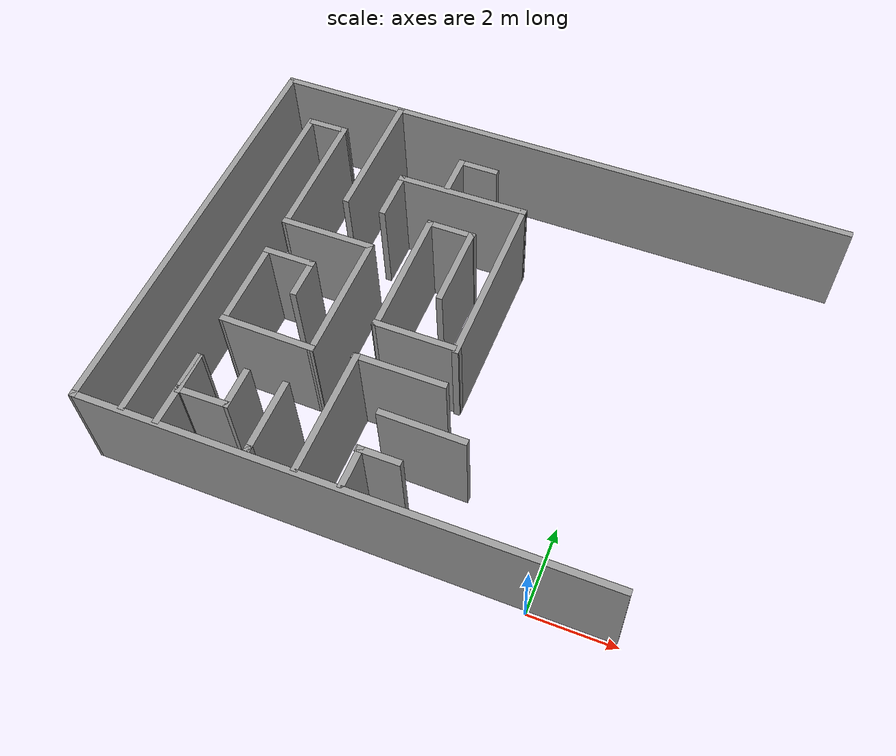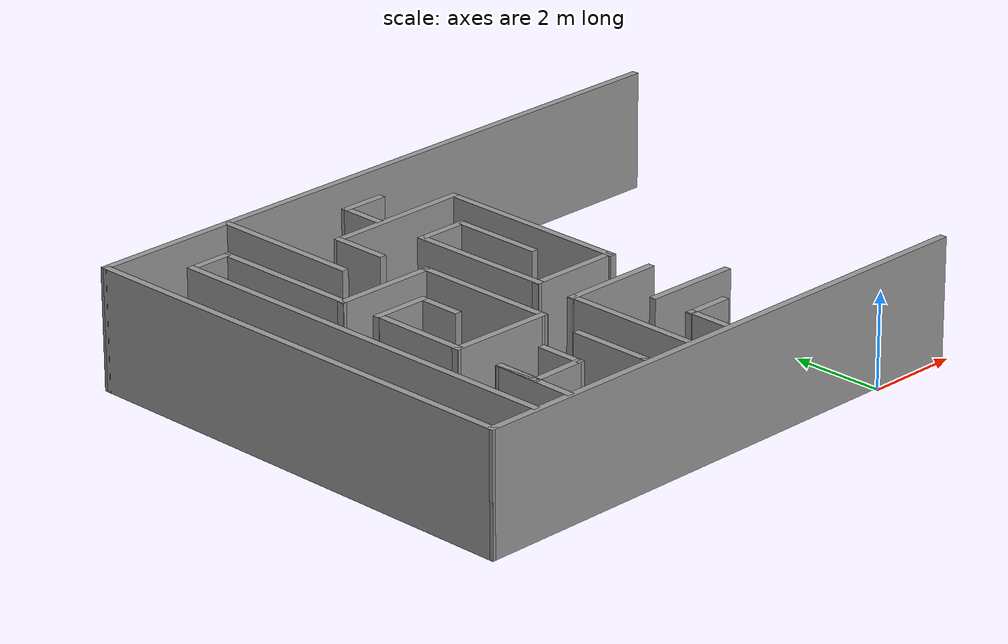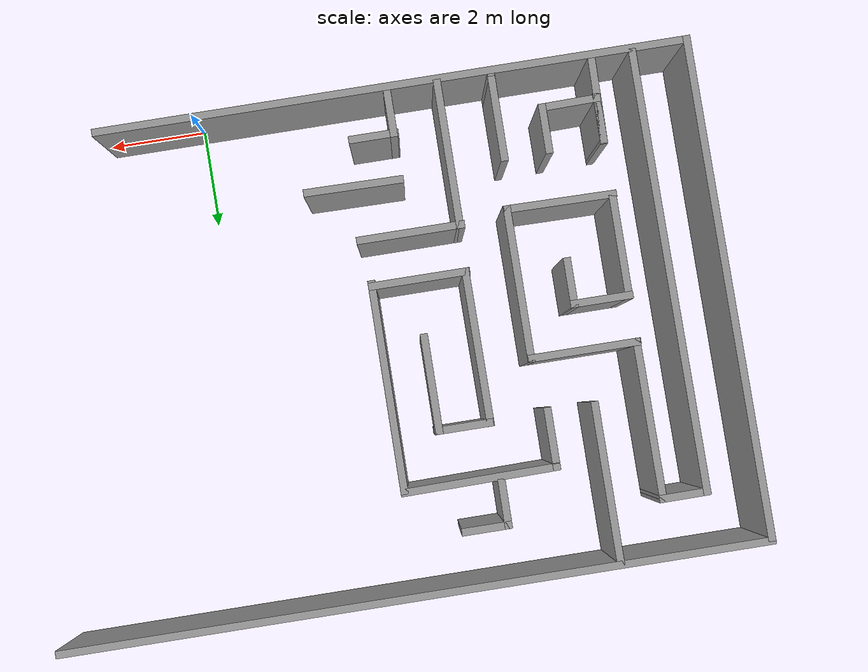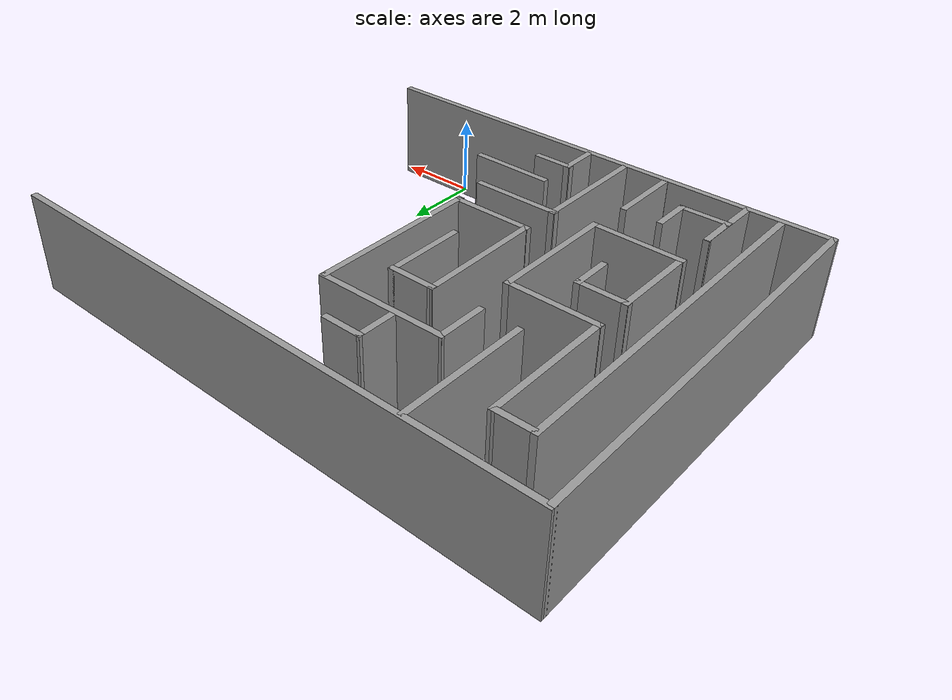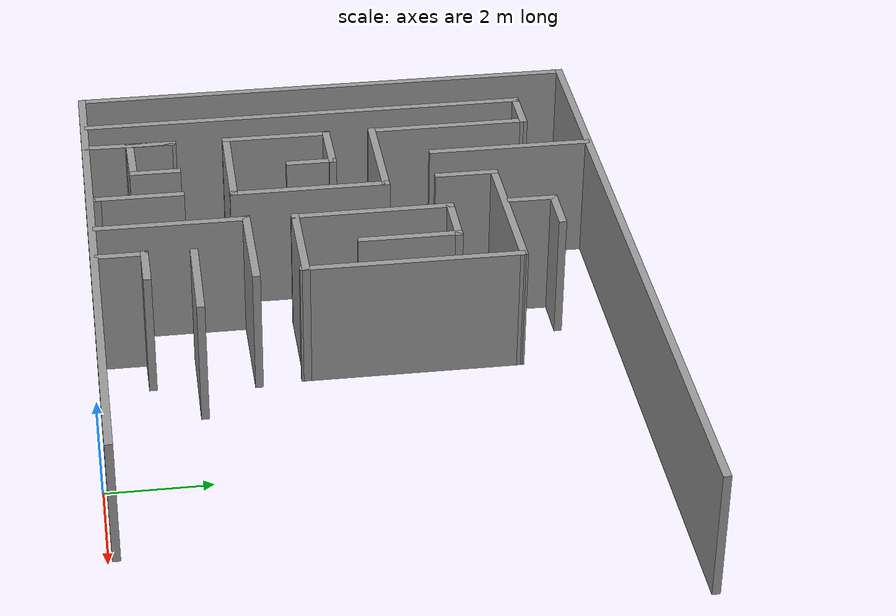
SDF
<sdf version="1.5">
 <model name="Maze2">
  <pose>-2.952 0.082564 0 0 -0 0</pose>
  <link name="Wall_5">
   <collision name="Wall_5_Collision">
    <geometry><box><size>14.2395 0.15 2.5</size></box></geometry>
    <pose>0 0 1.25 0 -0 0</pose>
   </collision>
   <visual name="Wall_5_Visual">
    <pose>0 0 1.25 0 -0 0</pose>
    <geometry><box><size>14.2395 0.15 2.5</size></box></geometry>
    <material>
     <script><uri>file://media/materials/scripts/gazebo.material</uri><name>Gazebo/Grey</name></script>
     <ambient>1 1 1 1</ambient>
    </material>
    <meta><layer>0</layer></meta>
   </visual>
   <pose>-0.02325 10.0829 0 0 -0 3.14159</pose>
  </link>
  <link name="Wall_52">
   <collision name="Wall_52_Collision">
    <geometry><box><size>8.93502 0.15 2.5</size></box></geometry>
    <pose>0 0 1.25 0 -0 0</pose>
   </collision>
   <visual name="Wall_52_Visual">
    <pose>0 0 1.25 0 -0 0</pose>
    <geometry><box><size>8.93502 0.15 2.5</size></box></geometry>
    <material>
     <script><uri>file://media/materials/scripts/gazebo.material</uri><name>Gazebo/Grey</name></script>
     <ambient>1 1 1 1</ambient>
    </material>
    <meta><layer>0</layer></meta>
   </visual>
   <pose>-5.9489 4.545 0 0 -0 1.5748</pose>
  </link>
  <link name="Wall_53">
   <collision name="Wall_53_Collision">
    <geometry><box><size>0.960041 0.15 2.5</size></box></geometry>
    <pose>0 0 1.25 0 -0 0</pose>
   </collision>
   <visual name="Wall_53_Visual">
    <pose>0 0 1.25 0 -0 0</pose>
    <geometry><box><size>0.960041 0.15 2.5</size></box></geometry>
    <material>
     <script><uri>file://media/materials/scripts/gazebo.material</uri><name>Gazebo/Grey</name></script>
     <ambient>1 1 1 1</ambient>
    </material>
    <meta><layer>0</layer></meta>
   </visual>
   <pose>-5.49995 8.94019 0 0 -0 0.007167</pose>
  </link>
  <link name="Wall_54">
   <collision name="Wall_54_Collision">
    <geometry><box><size>3.26322 0.15 2.5</size></box></geometry>
    <pose>0 0 1.25 0 -0 0</pose>
   </collision>
   <visual name="Wall_54_Visual">
    <pose>0 0 1.25 0 -0 0</pose>
    <geometry><box><size>3.26322 0.15 2.5</size></box></geometry>
    <material>
     <script><uri>file://media/materials/scripts/gazebo.material</uri><name>Gazebo/Grey</name></script>
     <ambient>1 1 1 1</ambient>
    </material>
    <meta><layer>0</layer></meta>
   </visual>
   <pose>-5.08833 7.38648 0 0 -0 -1.56655</pose>
  </link>
  <link name="Wall_55">
   <collision name="Wall_55_Collision">
    <geometry><box><size>2.25 0.15 2.5</size></box></geometry>
    <pose>0 0 1.25 0 -0 0</pose>
   </collision>
   <visual name="Wall_55_Visual">
    <pose>0 0 1.25 0 -0 0</pose>
    <geometry><box><size>2.25 0.15 2.5</size></box></geometry>
    <material>
     <script><uri>file://media/materials/scripts/gazebo.material</uri><name>Gazebo/Grey</name></script>
     <ambient>1 1 1 1</ambient>
    </material>
    <meta><layer>0</layer></meta>
   </visual>
   <pose>-4.04494 5.82987 0 0 -0 0</pose>
  </link>
  <link name="Wall_56">
   <collision name="Wall_56_Collision">
    <geometry><box><size>3.13176 0.15 2.5</size></box></geometry>
    <pose>0 0 1.25 0 -0 0</pose>
   </collision>
   <visual name="Wall_56_Visual">
    <pose>0 0 1.25 0 -0 0</pose>
    <geometry><box><size>3.13176 0.15 2.5</size></box></geometry>
    <material>
     <script><uri>file://media/materials/scripts/gazebo.material</uri><name>Gazebo/Grey</name></script>
     <ambient>1 1 1 1</ambient>
    </material>
    <meta><layer>0</layer></meta>
   </visual>
   <pose>-2.98179 4.33901 0 0 -0 -1.57085</pose>
  </link>
  <link name="Wall_57">
   <collision name="Wall_57_Collision">
    <geometry><box><size>2.25017 0.15 2.5</size></box></geometry>
    <pose>0 0 1.25 0 -0 0</pose>
   </collision>
   <visual name="Wall_57_Visual">
    <pose>0 0 1.25 0 -0 0</pose>
    <geometry><box><size>2.25017 0.15 2.5</size></box></geometry>
    <material>
     <script><uri>file://media/materials/scripts/gazebo.material</uri><name>Gazebo/Grey</name></script>
     <ambient>1 1 1 1</ambient>
    </material>
    <meta><layer>0</layer></meta>
   </visual>
   <pose>-4.04509 2.86137 0 0 -0 3.129</pose>
  </link>
  <link name="Wall_58">
   <collision name="Wall_58_Collision">
    <geometry><box><size>2.17595 0.15 2.5</size></box></geometry>
    <pose>0 0 1.25 0 -0 0</pose>
   </collision>
   <visual name="Wall_58_Visual">
    <pose>0 0 1.25 0 -0 0</pose>
    <geometry><box><size>2.17595 0.15 2.5</size></box></geometry>
    <material>
     <script><uri>file://media/materials/scripts/gazebo.material</uri><name>Gazebo/Grey</name></script>
     <ambient>1 1 1 1</ambient>
    </material>
    <meta><layer>0</layer></meta>
   </visual>
   <pose>-5.08152 3.88754 0 0 -0 1.57046</pose>
  </link>
  <link name="Wall_59">
   <collision name="Wall_59_Collision">
    <geometry><box><size>1.25 0.15 2.5</size></box></geometry>
    <pose>0 0 1.25 0 -0 0</pose>
   </collision>
   <visual name="Wall_59_Visual">
    <pose>0 0 1.25 0 -0 0</pose>
    <geometry><box><size>1.25 0.15 2.5</size></box></geometry>
    <material>
     <script><uri>file://media/materials/scripts/gazebo.material</uri><name>Gazebo/Grey</name></script>
     <ambient>1 1 1 1</ambient>
    </material>
    <meta><layer>0</layer></meta>
   </visual>
   <pose>-4.54118 4.90048 0 0 -0 0</pose>
  </link>
  <link name="Wall_6">
   <collision name="Wall_6_Collision">
    <geometry><box><size>10.1084 0.15 2.5</size></box></geometry>
    <pose>0 0 1.25 0 -0 0</pose>
   </collision>
   <visual name="Wall_6_Visual">
    <pose>0 0 1.25 0 -0 0</pose>
    <geometry><box><size>10.1084 0.15 2.5</size></box></geometry>
    <material>
     <script><uri>file://media/materials/scripts/gazebo.material</uri><name>Gazebo/Grey</name></script>
     <ambient>1 1 1 1</ambient>
    </material>
    <meta><layer>0</layer></meta>
   </visual>
   <pose>-7.0532 5.0421 0 0 -0 -1.56782</pose>
  </link>
  <link name="Wall_61">
   <collision name="Wall_61_Collision">
    <geometry><box><size>1 0.15 2.5</size></box></geometry>
    <pose>0 0 1.25 0 -0 0</pose>
   </collision>
   <visual name="Wall_61_Visual">
    <pose>0 0 1.25 0 -0 0</pose>
    <geometry><box><size>1 0.15 2.5</size></box></geometry>
    <material>
     <script><uri>file://media/materials/scripts/gazebo.material</uri><name>Gazebo/Grey</name></script>
     <ambient>1 1 1 1</ambient>
    </material>
    <meta><layer>0</layer></meta>
   </visual>
   <pose>-3.99118 4.47548 0 0 -0 -1.5708</pose>
  </link>
  <link name="Wall_63">
   <collision name="Wall_63_Collision">
    <geometry><box><size>1.82012 0.15 2.5</size></box></geometry>
    <pose>0 0 1.25 0 -0 0</pose>
   </collision>
   <visual name="Wall_63_Visual">
    <pose>0 0 1.25 0 -0 0</pose>
    <geometry><box><size>1.82012 0.15 2.5</size></box></geometry>
    <material>
     <script><uri>file://media/materials/scripts/gazebo.material</uri><name>Gazebo/Grey</name></script>
     <ambient>1 1 1 1</ambient>
    </material>
    <meta><layer>0</layer></meta>
   </visual>
   <pose>-5.09911 0.957782 0 0 -0 1.55695</pose>
  </link>
  <link name="Wall_64">
   <collision name="Wall_64_Collision">
    <geometry><box><size>1 0.15 2.5</size></box></geometry>
    <pose>0 0 1.25 0 -0 0</pose>
   </collision>
   <visual name="Wall_64_Visual">
    <pose>0 0 1.25 0 -0 0</pose>
    <geometry><box><size>1 0.15 2.5</size></box></geometry>
    <material>
     <script><uri>file://media/materials/scripts/gazebo.material</uri><name>Gazebo/Grey</name></script>
     <ambient>1 1 1 1</ambient>
    </material>
    <meta><layer>0</layer></meta>
   </visual>
   <pose>-5.08754 1.35027 0 0 -0 -1.5708</pose>
  </link>
  <link name="Wall_65">
   <collision name="Wall_65_Collision">
    <geometry><box><size>1.22751 0.15 2.5</size></box></geometry>
    <pose>0 0 1.25 0 -0 0</pose>
   </collision>
   <visual name="Wall_65_Visual">
    <pose>0 0 1.25 0 -0 0</pose>
    <geometry><box><size>1.22751 0.15 2.5</size></box></geometry>
    <material>
     <script><uri>file://media/materials/scripts/gazebo.material</uri><name>Gazebo/Grey</name></script>
     <ambient>1 1 1 1</ambient>
    </material>
    <meta><layer>0</layer></meta>
   </visual>
   <pose>-4.54886 0.951507 0 0 -0 0.016233</pose>
  </link>
  <link name="Wall_67">
   <collision name="Wall_67_Collision">
    <geometry><box><size>1 0.15 2.5</size></box></geometry>
    <pose>0 0 1.25 0 -0 0</pose>
   </collision>
   <visual name="Wall_67_Visual">
    <pose>0 0 1.25 0 -0 0</pose>
    <geometry><box><size>1 0.15 2.5</size></box></geometry>
    <material>
     <script><uri>file://media/materials/scripts/gazebo.material</uri><name>Gazebo/Grey</name></script>
     <ambient>1 1 1 1</ambient>
    </material>
    <meta><layer>0</layer></meta>
   </visual>
   <pose>-3.99268 1.38525 0 0 -0 1.5708</pose>
  </link>
  <link name="Wall_69">
   <collision name="Wall_69_Collision">
    <geometry><box><size>1.75 0.15 2.5</size></box></geometry>
    <pose>0 0 1.25 0 -0 0</pose>
   </collision>
   <visual name="Wall_69_Visual">
    <pose>0 0 1.25 0 -0 0</pose>
    <geometry><box><size>1.75 0.15 2.5</size></box></geometry>
    <material>
     <script><uri>file://media/materials/scripts/gazebo.material</uri><name>Gazebo/Grey</name></script>
     <ambient>1 1 1 1</ambient>
    </material>
    <meta><layer>0</layer></meta>
   </visual>
   <pose>-3.09357 1.01943 0 0 -0 -1.5708</pose>
  </link>
  <link name="Wall_7">
   <collision name="Wall_7_Collision">
    <geometry><box><size>12 0.15 2.5</size></box></geometry>
    <pose>0 0 1.25 0 -0 0</pose>
   </collision>
   <visual name="Wall_7_Visual">
    <pose>0 0 1.25 0 -0 0</pose>
    <geometry><box><size>12 0.15 2.5</size></box></geometry>
    <material>
     <script><uri>file://media/materials/scripts/gazebo.material</uri><name>Gazebo/Grey</name></script>
     <ambient>1 1 1 1</ambient>
    </material>
    <meta><layer>0</layer></meta>
   </visual>
   <pose>-1.1134 0.062884 0 0 -0 0</pose>
  </link>
  <link name="Wall_70">
   <collision name="Wall_70_Collision">
    <geometry><box><size>0.15 0.15 2.5</size></box></geometry>
    <pose>0 0 1.25 0 -0 0</pose>
   </collision>
   <visual name="Wall_70_Visual">
    <pose>0 0 1.25 0 -0 0</pose>
    <geometry><box><size>0.15 0.15 2.5</size></box></geometry>
    <material>
     <script><uri>file://media/materials/scripts/gazebo.material</uri><name>Gazebo/Grey</name></script>
     <ambient>1 1 1 1</ambient>
    </material>
    <meta><layer>0</layer></meta>
   </visual>
   <pose>-3.09357 0.209375 0 0 -0 0</pose>
  </link>
  <link name="Wall_73">
   <collision name="Wall_73_Collision">
    <geometry><box><size>3.25 0.15 2.5</size></box></geometry>
    <pose>0 0 1.25 0 -0 0</pose>
   </collision>
   <visual name="Wall_73_Visual">
    <pose>0 0 1.25 0 -0 0</pose>
    <geometry><box><size>3.25 0.15 2.5</size></box></geometry>
    <material>
     <script><uri>file://media/materials/scripts/gazebo.material</uri><name>Gazebo/Grey</name></script>
     <ambient>1 1 1 1</ambient>
    </material>
    <meta><layer>0</layer></meta>
   </visual>
   <pose>-4.07191 8.47903 0 0 -0 -1.5708</pose>
  </link>
  <link name="Wall_75">
   <collision name="Wall_75_Collision">
    <geometry><box><size>1.25 0.15 2.5</size></box></geometry>
    <pose>0 0 1.25 0 -0 0</pose>
   </collision>
   <visual name="Wall_75_Visual">
    <pose>0 0 1.25 0 -0 0</pose>
    <geometry><box><size>1.25 0.15 2.5</size></box></geometry>
    <material>
     <script><uri>file://media/materials/scripts/gazebo.material</uri><name>Gazebo/Grey</name></script>
     <ambient>1 1 1 1</ambient>
    </material>
    <meta><layer>0</layer></meta>
   </visual>
   <pose>-3.13721 7.45006 0 0 -0 1.5708</pose>
  </link>
  <link name="Wall_76">
   <collision name="Wall_76_Collision">
    <geometry><box><size>3.17213 0.15 2.5</size></box></geometry>
    <pose>0 0 1.25 0 -0 0</pose>
   </collision>
   <visual name="Wall_76_Visual">
    <pose>0 0 1.25 0 -0 0</pose>
    <geometry><box><size>3.17213 0.15 2.5</size></box></geometry>
    <material>
     <script><uri>file://media/materials/scripts/gazebo.material</uri><name>Gazebo/Grey</name></script>
     <ambient>1 1 1 1</ambient>
    </material>
    <meta><layer>0</layer></meta>
   </visual>
   <pose>-1.62624 8.01741 0 0 -0 0.011481</pose>
  </link>
  <link name="Wall_78">
   <collision name="Wall_78_Collision">
    <geometry><box><size>0.986087 0.15 2.5</size></box></geometry>
    <pose>0 0 1.25 0 -0 0</pose>
   </collision>
   <visual name="Wall_78_Visual">
    <pose>0 0 1.25 0 -0 0</pose>
    <geometry><box><size>0.986087 0.15 2.5</size></box></geometry>
    <material>
     <script><uri>file://media/materials/scripts/gazebo.material</uri><name>Gazebo/Grey</name></script>
     <ambient>1 1 1 1</ambient>
    </material>
    <meta><layer>0</layer></meta>
   </visual>
   <pose>-2.02313 8.55735 0 0 -0 1.56663</pose>
  </link>
  <link name="Wall_79">
   <collision name="Wall_79_Collision">
    <geometry><box><size>1 0.15 2.5</size></box></geometry>
    <pose>0 0 1.25 0 -0 0</pose>
   </collision>
   <visual name="Wall_79_Visual">
    <pose>0 0 1.25 0 -0 0</pose>
    <geometry><box><size>1 0.15 2.5</size></box></geometry>
    <material>
     <script><uri>file://media/materials/scripts/gazebo.material</uri><name>Gazebo/Grey</name></script>
     <ambient>1 1 1 1</ambient>
    </material>
    <meta><layer>0</layer></meta>
   </visual>
   <pose>-1.5964 8.9754 0 0 -0 0</pose>
  </link>
  <link name="Wall_81">
   <collision name="Wall_81_Collision">
    <geometry><box><size>4.25 0.15 2.5</size></box></geometry>
    <pose>0 0 1.25 0 -0 0</pose>
   </collision>
   <visual name="Wall_81_Visual">
    <pose>0 0 1.25 0 -0 0</pose>
    <geometry><box><size>4.25 0.15 2.5</size></box></geometry>
    <material>
     <script><uri>file://media/materials/scripts/gazebo.material</uri><name>Gazebo/Grey</name></script>
     <ambient>1 1 1 1</ambient>
    </material>
    <meta><layer>0</layer></meta>
   </visual>
   <pose>-0.115281 5.94407 0 0 -0 -1.5708</pose>
  </link>
  <link name="Wall_83">
   <collision name="Wall_83_Collision">
    <geometry><box><size>2.02577 0.15 2.5</size></box></geometry>
    <pose>0 0 1.25 0 -0 0</pose>
   </collision>
   <visual name="Wall_83_Visual">
    <pose>0 0 1.25 0 -0 0</pose>
    <geometry><box><size>2.02577 0.15 2.5</size></box></geometry>
    <material>
     <script><uri>file://media/materials/scripts/gazebo.material</uri><name>Gazebo/Grey</name></script>
     <ambient>1 1 1 1</ambient>
    </material>
    <meta><layer>0</layer></meta>
   </visual>
   <pose>-1.05317 3.93476 0 0 -0 3.14159</pose>
  </link>
  <link name="Wall_84">
   <collision name="Wall_84_Collision">
    <geometry><box><size>3.15827 0.15 2.5</size></box></geometry>
    <pose>0 0 1.25 0 -0 0</pose>
   </collision>
   <visual name="Wall_84_Visual">
    <pose>0 0 1.25 0 -0 0</pose>
    <geometry><box><size>3.15827 0.15 2.5</size></box></geometry>
    <material>
     <script><uri>file://media/materials/scripts/gazebo.material</uri><name>Gazebo/Grey</name></script>
     <ambient>1 1 1 1</ambient>
    </material>
    <meta><layer>0</layer></meta>
   </visual>
   <pose>-1.98341 5.43887 0 0 -0 1.57588</pose>
  </link>
  <link name="Wall_85">
   <collision name="Wall_85_Collision">
    <geometry><box><size>1.16825 0.15 2.5</size></box></geometry>
    <pose>0 0 1.25 0 -0 0</pose>
   </collision>
   <visual name="Wall_85_Visual">
    <pose>0 0 1.25 0 -0 0</pose>
    <geometry><box><size>1.16825 0.15 2.5</size></box></geometry>
    <material>
     <script><uri>file://media/materials/scripts/gazebo.material</uri><name>Gazebo/Grey</name></script>
     <ambient>1 1 1 1</ambient>
    </material>
    <meta><layer>0</layer></meta>
   </visual>
   <pose>-1.46664 6.94299 0 0 -0 0</pose>
  </link>
  <link name="Wall_86">
   <collision name="Wall_86_Collision">
    <geometry><box><size>2 0.15 2.5</size></box></geometry>
    <pose>0 0 1.25 0 -0 0</pose>
   </collision>
   <visual name="Wall_86_Visual">
    <pose>0 0 1.25 0 -0 0</pose>
    <geometry><box><size>2 0.15 2.5</size></box></geometry>
    <material>
     <script><uri>file://media/materials/scripts/gazebo.material</uri><name>Gazebo/Grey</name></script>
     <ambient>1 1 1 1</ambient>
    </material>
    <meta><layer>0</layer></meta>
   </visual>
   <pose>-0.972808 6.01799 0 0 -0 -1.5708</pose>
  </link>
  <link name="Wall_88">
   <collision name="Wall_88_Collision">
    <geometry><box><size>3 0.15 2.5</size></box></geometry>
    <pose>0 0 1.25 0 -0 0</pose>
   </collision>
   <visual name="Wall_88_Visual">
    <pose>0 0 1.25 0 -0 0</pose>
    <geometry><box><size>3 0.15 2.5</size></box></geometry>
    <material>
     <script><uri>file://media/materials/scripts/gazebo.material</uri><name>Gazebo/Grey</name></script>
     <ambient>1 1 1 1</ambient>
    </material>
    <meta><layer>0</layer></meta>
   </visual>
   <pose>-2.01507 1.57762 0 0 -0 1.5708</pose>
  </link>
  <link name="Wall_89">
   <collision name="Wall_89_Collision">
    <geometry><box><size>2.16283 0.15 2.5</size></box></geometry>
    <pose>0 0 1.25 0 -0 0</pose>
   </collision>
   <visual name="Wall_89_Visual">
    <pose>0 0 1.25 0 -0 0</pose>
    <geometry><box><size>2.16283 0.15 2.5</size></box></geometry>
    <material>
     <script><uri>file://media/materials/scripts/gazebo.material</uri><name>Gazebo/Grey</name></script>
     <ambient>1 1 1 1</ambient>
    </material>
    <meta><layer>0</layer></meta>
   </visual>
   <pose>-1.03192 3.00262 0 0 -0 0</pose>
  </link>
  <link name="Wall_91">
   <collision name="Wall_91_Collision">
    <geometry><box><size>2 0.15 2.5</size></box></geometry>
    <pose>0 0 1.25 0 -0 0</pose>
   </collision>
   <visual name="Wall_91_Visual">
    <pose>0 0 1.25 0 -0 0</pose>
    <geometry><box><size>2 0.15 2.5</size></box></geometry>
    <material>
     <script><uri>file://media/materials/scripts/gazebo.material</uri><name>Gazebo/Grey</name></script>
     <ambient>1 1 1 1</ambient>
    </material>
    <meta><layer>0</layer></meta>
   </visual>
   <pose>-0.061526 1.91973 0 0 -0 -0.012573</pose>
  </link>
  <link name="Wall_94">
   <collision name="Wall_94_Collision">
    <geometry><box><size>1 0.15 2.5</size></box></geometry>
    <pose>0 0 1.25 0 -0 0</pose>
   </collision>
   <visual name="Wall_94_Visual">
    <pose>0 0 1.25 0 -0 0</pose>
    <geometry><box><size>1 0.15 2.5</size></box></geometry>
    <material>
     <script><uri>file://media/materials/scripts/gazebo.material</uri><name>Gazebo/Grey</name></script>
     <ambient>1 1 1 1</ambient>
    </material>
    <meta><layer>0</layer></meta>
   </visual>
   <pose>-1.009 0.577621 0 0 -0 1.5708</pose>
  </link>
  <link name="Wall_95">
   <collision name="Wall_95_Collision">
    <geometry><box><size>1 0.15 2.5</size></box></geometry>
    <pose>0 0 1.25 0 -0 0</pose>
   </collision>
   <visual name="Wall_95_Visual">
    <pose>0 0 1.25 0 -0 0</pose>
    <geometry><box><size>1 0.15 2.5</size></box></geometry>
    <material>
     <script><uri>file://media/materials/scripts/gazebo.material</uri><name>Gazebo/Grey</name></script>
     <ambient>1 1 1 1</ambient>
    </material>
    <meta><layer>0</layer></meta>
   </visual>
   <pose>-0.607258 1.00262 0 0 -0 0</pose>
  </link>
  <static>1</static>
 </model>
</sdf>
